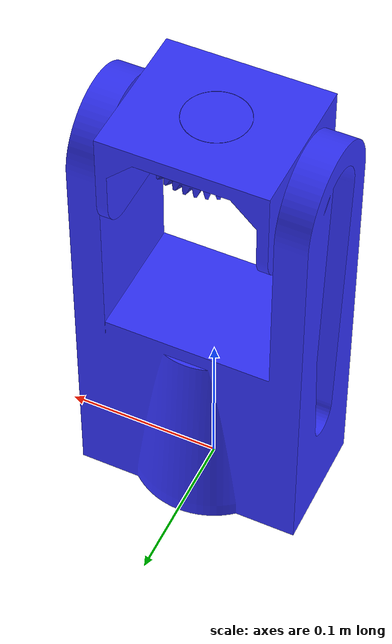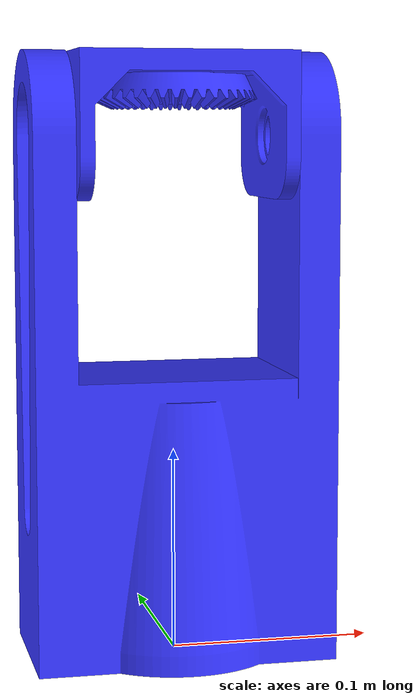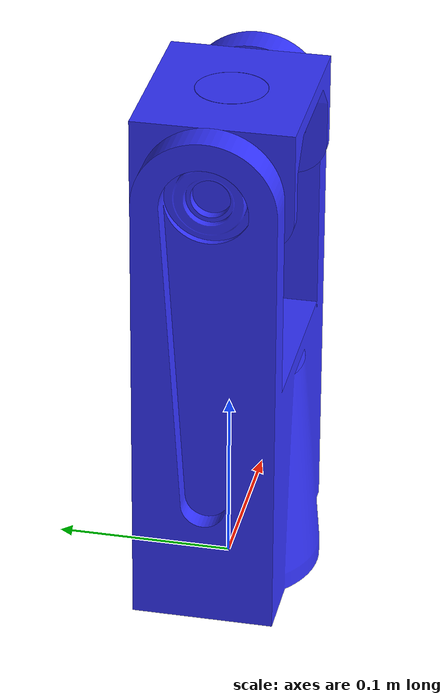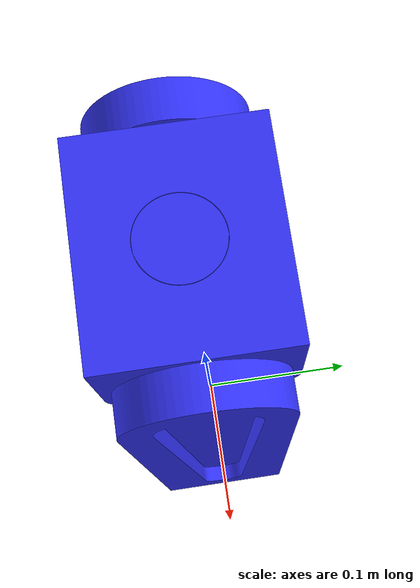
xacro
<?xml version="1.0"?>
<robot xmlns:xacro="http://www.ros.org/wiki/xacro">

    <material name="black">
        <color rgba="0 0 0 1"/>
    </material>

    <material name="blue">
        <color rgba="0.2 0.2 1 1"/>
    </material>

    <link name="world">
    </link>

    <link name="diff_base">
        <visual>
            <origin xyz="0 0 0"/>
            <geometry>
                <mesh filename="package://robotic_arm/meshes/diff_base.stl" scale="0.001 0.001 0.001"/>
            </geometry>
            <material name="blue"/>
        </visual>
        <collision>
            <origin xyz="0 0 0"/>
            <geometry>
                <mesh filename="package://robotic_arm/meshes/diff_base.stl" scale="0.001 0.001 0.001"/>
            </geometry>
        </collision>
    </link>

    <joint name="diff_base_joint" type="fixed">
        <parent link="world"/>
        <child link="diff_base"/>
        <origin xyz="0 0 0" rpy="0 0 0"/>
    </joint>

    <link name="carrier">
        <visual>
            <origin xyz="0 0 0.0149"/>
            <geometry>
                <mesh filename="package://robotic_arm/meshes/carrier.stl" scale="0.001 0.001 0.001"/>
            </geometry>
            <material name="blue"/>
        </visual>
        <collision>
            <origin xyz="0 0 0.0149"/>
            <geometry>
                <mesh filename="package://robotic_arm/meshes/carrier.stl" scale="0.001 0.001 0.001"/>
            </geometry>
        </collision>
    </link>

    <joint name="carrier_joint" type="continuous">
        <parent link="diff_base"/>
        <child link="carrier"/>
        <origin xyz="0 0 0.2551" rpy="0 0 0"/>
        <axis xyz="1 0 0"/>
    </joint>

    <link name="bevel">
        <visual>
            <origin xyz="0 0 0" rpy="${pi} 0 0"/>
            <geometry>
                <mesh filename="package://robotic_arm/meshes/bevel_gear.stl" scale="0.001 0.001 0.001"/>
            </geometry>
            <material name="blue"/>
        </visual>
        <collision>
            <origin xyz="0 0 0" rpy="${pi} 0 0"/>
            <geometry>
                <mesh filename="package://robotic_arm/meshes/bevel_gear.stl" scale="0.001 0.001 0.001"/>
            </geometry>
        </collision>
    </link>

    <joint name="bevel_joint" type="continuous">
        <parent link="carrier"/>
        <child link="bevel"/>
        <origin xyz="0 0 0.0399" rpy="0 0 0"/>
        <axis xyz="0 0 1"/>
    </joint>

</robot>
